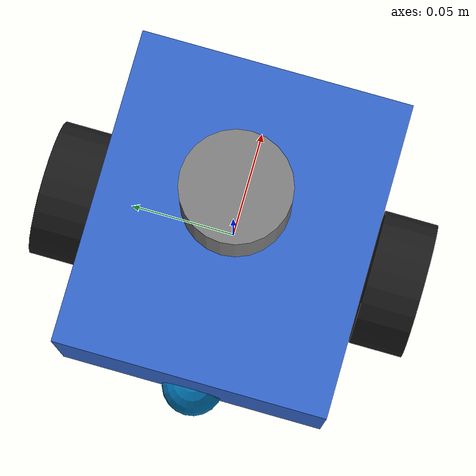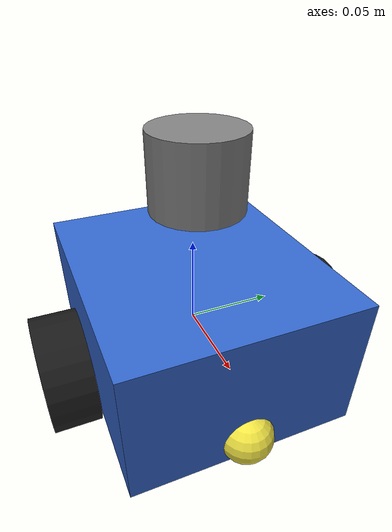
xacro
<?xml version="1.0"?>
<robot name="jetbot" xmlns:xacro="http://www.ros.org/wiki/xacro">

  <xacro:arg name="botname" default="jetbot"/>
  <xacro:property name="botname" value="$(arg botname)"/>

  <!-- ===================== Base ===================== -->
  <link name="base_link">
    <visual>
      <geometry>
        <box size="0.15 0.13 0.08"/>
      </geometry>
      <material name="blue">
        <color rgba="0.2 0.4 0.8 1"/>
      </material>
    </visual>
    <collision>
      <geometry>
        <box size="0.15 0.13 0.08"/>
      </geometry>
    </collision>
    <inertial>
      <mass value="0.5"/>
      <inertia ixx="0.001" ixy="0" ixz="0" iyy="0.001" iyz="0" izz="0.001"/>
    </inertial>
  </link>

  <!-- ===================== Wheels ===================== -->
  <link name="wheel_right_link">
    <visual>
      <origin rpy="1.5708 0 0" xyz="0 0 0"/>
      <geometry>
        <cylinder radius="0.033" length="0.026"/>
      </geometry>
      <material name="black">
        <color rgba="0.1 0.1 0.1 1"/>
      </material>
    </visual>
    <collision>
      <origin rpy="1.5708 0 0" xyz="0 0 0"/>
      <geometry>
        <cylinder radius="0.033" length="0.026"/>
      </geometry>
    </collision>
    <inertial>
      <mass value="0.05"/>
      <inertia ixx="0.0001" ixy="0" ixz="0" iyy="0.0001" iyz="0" izz="0.0001"/>
    </inertial>
  </link>

  <joint name="wheel_right_joint" type="continuous">
    <parent link="base_link"/>
    <child link="wheel_right_link"/>
    <origin xyz="0 -0.0796 -0.015" rpy="0 0 0"/>
    <axis xyz="0 1 0"/>
  </joint>

  <link name="wheel_left_link">
    <visual>
      <origin rpy="1.5708 0 0" xyz="0 0 0"/>
      <geometry>
        <cylinder radius="0.033" length="0.026"/>
      </geometry>
      <material name="black"/>
    </visual>
    <collision>
      <origin rpy="1.5708 0 0" xyz="0 0 0"/>
      <geometry>
        <cylinder radius="0.033" length="0.026"/>
      </geometry>
    </collision>
    <inertial>
      <mass value="0.05"/>
      <inertia ixx="0.0001" ixy="0" ixz="0" iyy="0.0001" iyz="0" izz="0.0001"/>
    </inertial>
  </link>

  <joint name="wheel_left_joint" type="continuous">
    <parent link="base_link"/>
    <child link="wheel_left_link"/>
    <origin xyz="0 0.0796 -0.015" rpy="0 0 0"/>
    <axis xyz="0 1 0"/>
  </joint>

  <!-- ===================== Casters ===================== -->
  <link name="caster_front_link">
    <visual>
      <geometry><sphere radius="0.015"/></geometry>
    </visual>
    <collision>
      <geometry><sphere radius="0.015"/></geometry>
    </collision>
    <inertial>
      <mass value="0.01"/>
      <inertia ixx="0.00001" ixy="0" ixz="0" iyy="0.00001" iyz="0" izz="0.00001"/>
    </inertial>
  </link>
  <joint name="caster_front_joint" type="fixed">
    <parent link="base_link"/>
    <child link="caster_front_link"/>
    <origin xyz="0.072 0 -0.028"/>
  </joint>

  <link name="caster_back_link">
    <visual>
      <geometry><sphere radius="0.015"/></geometry>
    </visual>
    <collision>
      <geometry><sphere radius="0.015"/></geometry>
    </collision>
    <inertial>
      <mass value="0.01"/>
      <inertia ixx="0.00001" ixy="0" ixz="0" iyy="0.00001" iyz="0" izz="0.00001"/>
    </inertial>
  </link>
  <joint name="caster_back_joint" type="fixed">
    <parent link="base_link"/>
    <child link="caster_back_link"/>
    <origin xyz="-0.072 0 -0.028"/>
  </joint>

  <!-- ===================== LIDAR (RPLIDAR A1, real position) ===================== -->
  <link name="lidar_link">
    <visual>
      <geometry><cylinder radius="0.025" length="0.04"/></geometry>
      <material name="grey">
        <color rgba="0.5 0.5 0.5 1"/>
      </material>
    </visual>
    <collision>
      <geometry><cylinder radius="0.025" length="0.04"/></geometry>
    </collision>
    <inertial>
      <mass value="0.06"/>
      <inertia ixx="0.00002" ixy="0" ixz="0" iyy="0.00002" iyz="0" izz="0.00002"/>
    </inertial>
  </link>
  <joint name="lidar_joint" type="fixed">
    <parent link="base_link"/>
    <child link="lidar_link"/>
    <origin xyz="0.005 0.0003 0.092"/>
  </joint>

  <!-- ===================== Gazebo Sim: Differential Drive Plugin ===================== -->
  <gazebo>
    <plugin filename="gz-sim-diff-drive-system" name="gz::sim::systems::DiffDrive">
      <left_joint>wheel_left_joint</left_joint>
      <right_joint>wheel_right_joint</right_joint>
      <wheel_separation>0.1592</wheel_separation>
      <wheel_radius>0.033</wheel_radius>
      <odom_publish_frequency>30</odom_publish_frequency>
      <topic>${botname}/cmd_vel</topic>
    </plugin>
    <plugin filename="gz-sim-pose-publisher-system" name="gz::sim::systems::PosePublisher">
      <publish_link_pose>true</publish_link_pose>
      <use_pose_vector_msg>true</use_pose_vector_msg>
    </plugin>
  </gazebo>

  <!-- ===================== Gazebo Sim: LIDAR Sensor (real RPLIDAR A1 specs) ===================== -->
  <gazebo reference="lidar_link">
    <sensor name="lidar" type="gpu_lidar">
      <topic>${botname}/scan</topic>
      <update_rate>5.5</update_rate>
      <lidar>
        <scan>
          <horizontal>
            <samples>360</samples>
            <resolution>1</resolution>
            <min_angle>-3.14159</min_angle>
            <max_angle>3.14159</max_angle>
          </horizontal>
        </scan>
        <range>
          <min>0.15</min>
          <max>12.0</max>
          <resolution>0.005</resolution>
        </range>
      </lidar>
      <always_on>true</always_on>
      <visualize>true</visualize>
    </sensor>
  </gazebo>
</robot>
